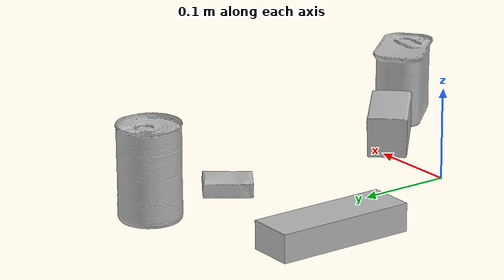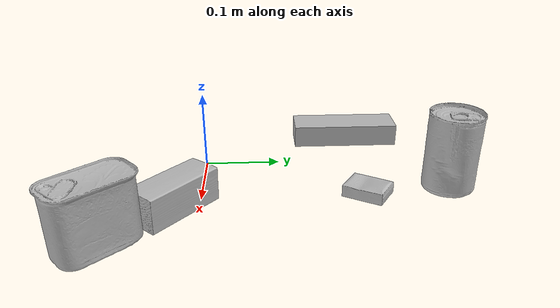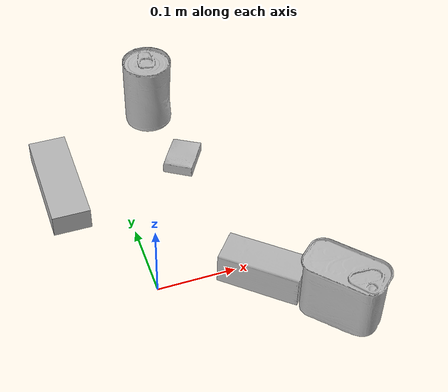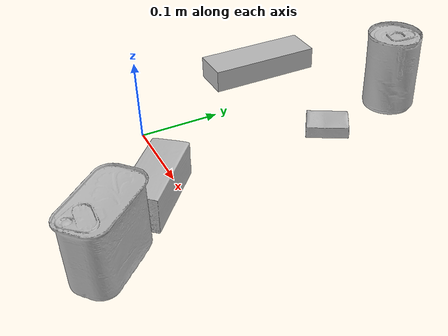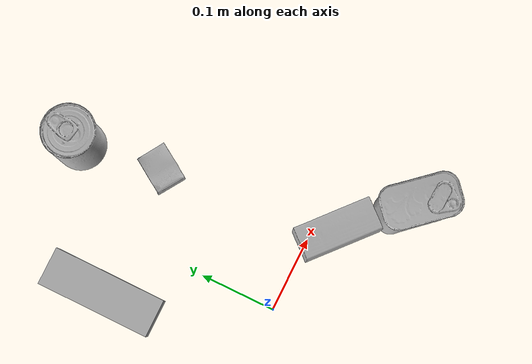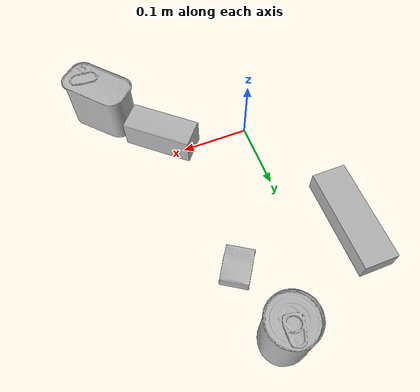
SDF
<sdf version="1.4">
  <world name="default">
    <light name="light1" type="point">
      <pose>0 0 1 0 0 0</pose>
      <diffuse>3 3 3 1</diffuse>
      <specular>3 3 3 1</specular>
    </light>
    <light name="light2" type="point">
      <pose>0 0.5 2 0 0 0</pose>
      <diffuse>1 1 1 1</diffuse>
      <specular>1 1 1 1</specular>
    </light>
    <light name="light3" type="point">
      <pose>0 0.5 2 0 0 0</pose>
      <diffuse>3 3 3 1</diffuse>
      <specular>3 3 3 1</specular>
    </light>
    <scene>
      <ambient>0.7 0.7 0.7</ambient>
    </scene>
    <model name="box1">
      <link name="link_box1">
        <collision name="default">
          <geometry>
            <mesh>
              <uri>model://jenga/collision_meshes/collision.obj</uri>
              <scale>1.0 1.0 1.0</scale>
            </mesh>
          </geometry>
          <surface>
            <friction>
              <ode>
                <mu>0.5</mu>
                <mu2>0.5</mu2>
              </ode>
            </friction>
          <contact>
        <ode>
            <max_vel>0</max_vel>
            <min_depth>0.0001</min_depth>
            <kp>1e8</kp>
        </ode>
    </contact></surface>
        </collision>
        <visual name="default">
          <geometry>
            <mesh>
              <uri>model://jenga/visual_meshes/visual.dae</uri>
              <scale>1.0 1.0 1.0</scale>
            </mesh>
          </geometry>
        </visual>
        <inertial>
          <mass>0.13349448144435883</mass>
          <pose>-2.502855807051674e-07 -0.00010250010382151231 -4.0923401684267446e-05 0.0 -7.342153480750062e-07 0.0</pose>
          <inertia>
            <ixx>3.694116e-05</ixx>
            <iyy>0.0002503123</iyy>
            <izz>0.00026722968</izz>
            <ixy>0</ixy>
            <ixz>0</ixz>
            <iyz>0</iyz>
          </inertia>
        </inertial>
      </link>
      <pose>-0.07518534362316132 0.20221365988254547 0.014999997802078724 -1.0212247105695718e-09 3.9465190818730256e-10 -1.5708288301958884</pose>
    </model>
    <model name="box2">
      <link name="link_box2">
        <collision name="default">
          <geometry>
            <mesh>
              <uri>model://cracker_box/collision_meshes/collision.obj</uri>
              <scale>0.25 0.25 0.25</scale>
            </mesh>
          </geometry>
          <surface>
            <friction>
              <ode>
                <mu>0.5</mu>
                <mu2>0.5</mu2>
              </ode>
            </friction>
          <contact>
        <ode>
            <max_vel>0</max_vel>
            <min_depth>0.0001</min_depth>
            <kp>1e8</kp>
        </ode>
    </contact></surface>
        </collision>
        <visual name="default">
          <geometry>
            <mesh>
              <uri>model://cracker_box/visual_meshes/visual.dae</uri>
              <scale>0.25 0.25 0.25</scale>
            </mesh>
          </geometry>
        </visual>
        <inertial>
          <mass>0.02145323157310486</mass>
          <pose>0.00023660292208660394 6.358561950037256e-05 -0.00042573839891701937 -0.00031620765701486096 -0.011106487737550933 0.0025467954675071156</pose>
          <inertia>
            <ixx>3.4104648e-06</ixx>
            <iyy>5.631348e-06</iyy>
            <izz>8.036451e-06</izz>
            <ixy>0</ixy>
            <ixz>0</ixz>
            <iyz>0</iyz>
          </inertia>
        </inertial>
      </link>
      <pose>0.09855830669403076 0.20746615529060364 0.009120449423789978 -0.011787841996523017 -0.007367161046365592 0.9991492180435241</pose>
    </model>
    <model name="box3">
      <link name="link_box3">
        <collision name="default">
          <geometry>
            <mesh>
              <uri>model://wood_block/collision_meshes/collision.obj</uri>
              <scale>0.5 0.5 0.5</scale>
            </mesh>
          </geometry>
          <surface>
            <friction>
              <ode>
                <mu>0.5</mu>
                <mu2>0.5</mu2>
              </ode>
            </friction>
          <contact>
        <ode>
            <max_vel>0</max_vel>
            <min_depth>0.0001</min_depth>
            <kp>1e8</kp>
        </ode>
    </contact></surface>
        </collision>
        <visual name="default">
          <geometry>
            <mesh>
              <uri>model://wood_block/visual_meshes/visual.dae</uri>
              <scale>0.5 0.5 0.5</scale>
            </mesh>
          </geometry>
        </visual>
        <inertial>
          <mass>0.16313479840755463</mass>
          <pose>-2.9066577553749084e-06 -0.000285404734313488 0.00013204291462898254 -0.05221116552051519 -0.005192696094342747 -0.006861377806143115</pose>
          <inertia>
            <ixx>5.457476e-05</ixx>
            <iyy>0.00017240169</iyy>
            <izz>0.00017175681</izz>
            <ixy>0</ixy>
            <ixz>0</ixz>
            <iyz>0</iyz>
          </inertia>
        </inertial>
      </link>
      <pose>0.12527337670326233 -0.027919994667172432 0.022629264742136 -0.005208361615071991 0.005718736354047231 -0.7151233657775722</pose>
    </model>
    <model name="can1">
      <link name="link_can1">
        <collision name="default">
          <geometry>
            <mesh>
              <uri>model://potted_meat_can/collision_meshes/collision.obj</uri>
              <scale>1.0 1.0 1.0</scale>
            </mesh>
          </geometry>
          <surface>
            <friction>
              <ode>
                <mu>0.5</mu>
                <mu2>0.5</mu2>
              </ode>
            </friction>
          <contact>
        <ode>
            <max_vel>0</max_vel>
            <min_depth>0.0001</min_depth>
            <kp>1e8</kp>
        </ode>
    </contact></surface>
        </collision>
        <visual name="default">
          <geometry>
            <mesh>
              <uri>model://potted_meat_can/visual_meshes/visual.dae</uri>
              <scale>1.0 1.0 1.0</scale>
            </mesh>
          </geometry>
        </visual>
        <inertial>
          <mass>0.5782443881034851</mass>
          <pose>0.00022888134117238224 -5.989118290017359e-05 -0.0006367441383190453 -0.028093373189925445 -0.007232601430987569 0.015406267190211613</pose>
          <inertia>
            <ixx>0.0007438508</ixx>
            <iyy>0.00045194585</iyy>
            <izz>0.0005410098</izz>
            <ixy>0</ixy>
            <ixz>0</ixz>
            <iyz>0</iyz>
          </inertia>
        </inertial>
      </link>
      <pose>0.19452545046806335 -0.101873017847538 0.04212801158428192 -6.311336751375673e-08 -1.095384034809946e-07 0.7161214960572646</pose>
    </model>
    <model name="can2">
      <link name="link_can2">
        <collision name="default">
          <geometry>
            <mesh>
              <uri>model://tomato_soup_can/collision_meshes/collision.obj</uri>
              <scale>1.0 1.0 1.0</scale>
            </mesh>
          </geometry>
          <surface>
            <friction>
              <ode>
                <mu>0.5</mu>
                <mu2>0.5</mu2>
              </ode>
            </friction>
          <contact>
        <ode>
            <max_vel>0</max_vel>
            <min_depth>0.0001</min_depth>
            <kp>1e8</kp>
        </ode>
    </contact></surface>
        </collision>
        <visual name="default">
          <geometry>
            <mesh>
              <uri>model://tomato_soup_can/visual_meshes/visual.dae</uri>
              <scale>1.0 1.0 1.0</scale>
            </mesh>
          </geometry>
        </visual>
        <inertial>
          <mass>0.191082164645195</mass>
          <pose>0.00012652273289859295 0.00010805522470036522 -0.0017973986687138677 0.007020071598615513 0.0004229929517945175 -0.009903241323856832</pose>
          <inertia>
            <ixx>0.0002095054</ixx>
            <iyy>0.00020829454</iyy>
            <izz>0.0001085847</izz>
            <ixy>0</ixy>
            <ixz>0</ixz>
            <iyz>0</iyz>
          </inertia>
        </inertial>
      </link>
      <pose>0.08129172772169113 0.3143365681171417 0.05127402022480965 -7.214164688843426e-07 -9.293718166543095e-07 2.6664214540538174</pose>
    </model>
  <physics type="ode">
      <max_contacts>50</max_contacts>
      <ode>
        <solver>
          <type>quick</type>
          <iters>75</iters>
        </solver>
        <constraints>
          <contact_max_correcting_vel>0</contact_max_correcting_vel>
          <contact_surface_layer>0</contact_surface_layer>
        </constraints>
      </ode>
    </physics></world>
</sdf>
